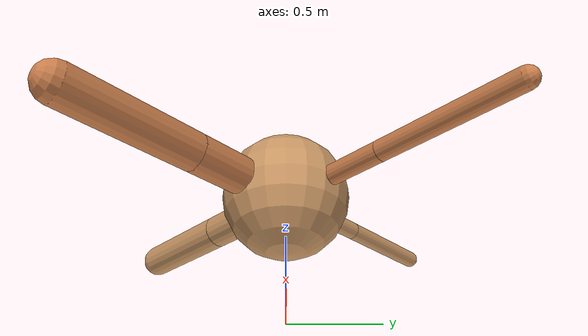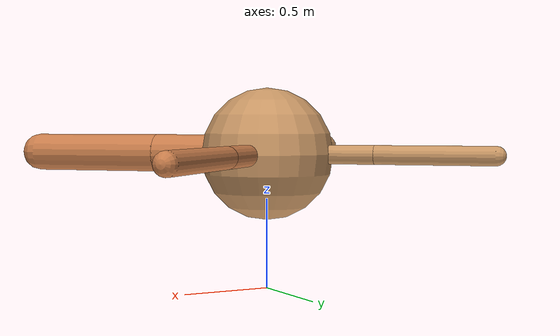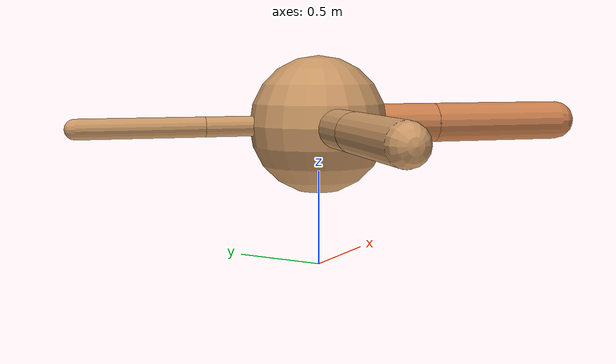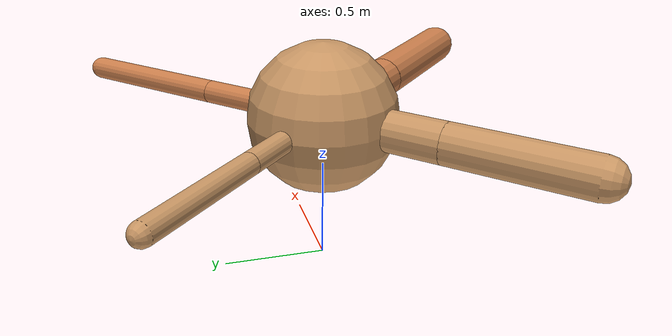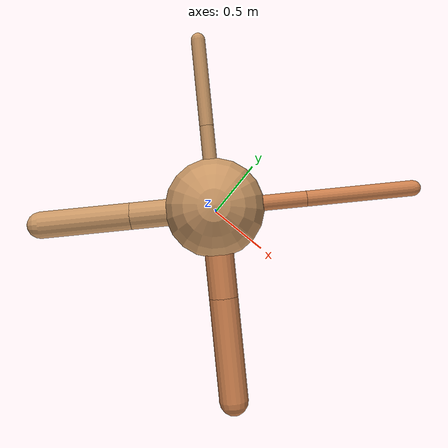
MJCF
<?xml version="1.0" ?>
<mujoco model="ant">

	<compiler angle="degree" coordinate="local" inertiafromgeom="true"/>

	<option integrator="RK4" timestep="0.01"/>

	<custom>

		<numeric data="0.0 0.0 0.55 1.0 0.0 0.0 0.0 0.0 1.0 0.0 -1.0 0.0 -1.0 0.0 1.0" name="init_qpos"/>

	</custom>

	<default>

		<joint armature="1" damping="1" limited="true"/>

		<geom conaffinity="0" condim="3" density="5.0" friction="1.5 0.1 0.1" margin="0.01" rgba="0.8 0.6 0.4 1"/>

	</default>

	<worldbody>

		<body name="torso" pos="0 0 0.75">

			<geom name="torso_geom" pos="0 0 0" size="0.36566234222696054" type="sphere"/>

			<!--joint armature="0" damping="0" limited="false" margin="0.01" name="root" pos="0 0 0" type="free"/-->

			<body name="front_left_leg" pos="0 0 0">

				<geom fromto="0 0 0 0.2 0.2 0" name="aux_1_geom" size="0.057724146341725444" type="capsule" rgba=".8 .5 .3 1"/>

				<body name="aux_1" pos="0.2 0.2 0">

					<joint axis="0 0 1" name="hip_1" pos="0.0 0.0 0.0" range="-40 40" type="hinge"/>

					<geom fromto="0 0 0 0.2756525472444193 0.2756525472444193 0" name="left_leg_geom" size="0.057724146341725444" type="capsule" rgba=".8 .5 .3 1"/>

					<body pos="0.2756525472444193 0.2756525472444193 0" name="front_left_foot">

						<joint axis="-1 1 0" name="ankle_1" pos="0.0 0.0 0.0" range="30 100" type="hinge"/>

						<geom fromto="0 0 0 0.5513050944888386 0.5513050944888386 0" name="left_ankle_geom" size="0.057724146341725444" type="capsule" rgba=".8 .5 .3 1"/>

					</body>

				</body>

			</body>

			<body name="front_right_leg" pos="0 0 0">

				<geom fromto="0 0 0 -0.2 0.2 0" name="aux_2_geom" size="0.05225199993378954" type="capsule"/>

				<body name="aux_2" pos="-0.2 0.2 0">

					<joint axis="0 0 1" name="hip_2" pos="0.0 0.0 0.0" range="-40 40" type="hinge"/>

					<geom fromto="0 0 0 -0.22493259263179094 0.22493259263179094 0" name="right_leg_geom" size="0.05225199993378954" type="capsule"/>

					<body pos="-0.22493259263179094 0.22493259263179094 0" name="front_right_foot">

						<joint axis="1 1 0" name="ankle_2" pos="0.0 0.0 0.0" range="-100 -30" type="hinge"/>

						<geom fromto="0 0 0 -0.4498651852635819 0.4498651852635819 0" name="right_ankle_geom" size="0.05225199993378954" type="capsule"/>

					</body>

				</body>

			</body>

			<body name="left_back_leg" pos="0 0 0">

				<geom fromto="0 0 0 -0.2 -0.2 0" name="aux_3_geom" size="0.09897102658851013" type="capsule"/>

				<body name="aux_3" pos="-0.2 -0.2 0">

					<joint axis="0 0 1" name="hip_3" pos="0.0 0.0 0.0" range="-40 40" type="hinge"/>

					<geom fromto="0 0 0 -0.23368787030602425 -0.23368787030602425 0" name="back_leg_geom" size="0.09897102658851013" type="capsule"/>

					<body pos="-0.23368787030602425 -0.23368787030602425 0" name="left_back_foot">

						<joint axis="-1 1 0" name="ankle_3" pos="0.0 0.0 0.0" range="-100 -30" type="hinge"/>

						<geom fromto="0 0 0 -0.4673757406120485 -0.4673757406120485 0" name="third_ankle_geom" size="0.09897102658851013" type="capsule"/>

					</body>

				</body>

			</body>

			<body name="right_back_leg" pos="0 0 0">

				<geom fromto="0 0 0 0.2 -0.2 0" name="aux_4_geom" size="0.10697670760761264" type="capsule" rgba=".8 .5 .3 1"/>

				<body name="aux_4" pos="0.2 -0.2 0">

					<joint axis="0 0 1" name="hip_4" pos="0.0 0.0 0.0" range="-40 40" type="hinge"/>

					<geom fromto="0 0 0 0.2657461796266138 -0.2657461796266138 0" name="rightback_leg_geom" size="0.10697670760761264" type="capsule" rgba=".8 .5 .3 1"/>

					<body pos="0.2657461796266138 -0.2657461796266138 0" name="right_back_foot">

						<joint axis="1 1 0" name="ankle_4" pos="0.0 0.0 0.0" range="30 100" type="hinge"/>

						<geom fromto="0 0 0 0.5314923592532276 -0.5314923592532276 0" name="fourth_ankle_geom" size="0.10697670760761264" type="capsule" rgba=".8 .5 .3 1"/>

					</body>

				</body>

			</body>

		</body>

	</worldbody>

	<actuator>

		<motor ctrllimited="true" ctrlrange="-1.0 1.0" joint="hip_4" gear="150"/>

		<motor ctrllimited="true" ctrlrange="-1.0 1.0" joint="ankle_4" gear="150"/>

		<motor ctrllimited="true" ctrlrange="-1.0 1.0" joint="hip_1" gear="150"/>

		<motor ctrllimited="true" ctrlrange="-1.0 1.0" joint="ankle_1" gear="150"/>

		<motor ctrllimited="true" ctrlrange="-1.0 1.0" joint="hip_2" gear="150"/>

		<motor ctrllimited="true" ctrlrange="-1.0 1.0" joint="ankle_2" gear="150"/>

		<motor ctrllimited="true" ctrlrange="-1.0 1.0" joint="hip_3" gear="150"/>

		<motor ctrllimited="true" ctrlrange="-1.0 1.0" joint="ankle_3" gear="150"/>

	</actuator>

</mujoco>
